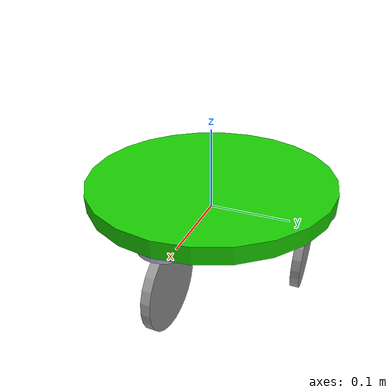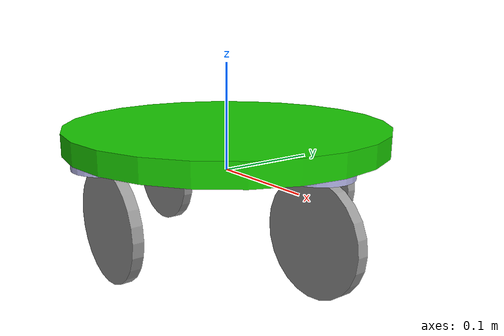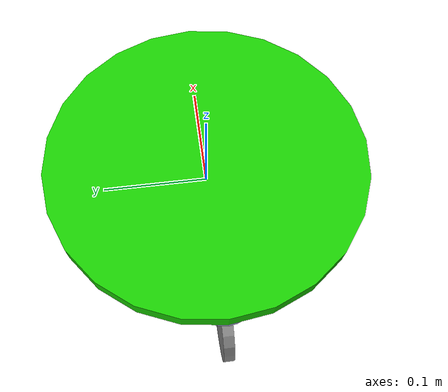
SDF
<?xml version='1.0'?>
<sdf version='1.6'>
  <model name='my_model'>
    <link name='link_0'>
      <pose frame=''>0 0 0.034444 0 -0 0</pose>
      <inertial>
        <mass>1</mass>
        <inertia>
          <ixx>0.145833</ixx>
          <ixy>0</ixy>
          <ixz>0</ixz>
          <iyy>0.145833</iyy>
          <iyz>0</iyz>
          <izz>0.125</izz>
        </inertia>
        <pose frame=''>0 0 0 0 -0 0</pose>
      </inertial>
      <self_collide>0</self_collide>
      <kinematic>0</kinematic>
      <gravity>1</gravity>
      <visual name='visual'>
        <pose frame=''>0 0 0 0 -0 0</pose>
        <geometry>
          <cylinder>
            <radius>0.15</radius>
            <length>0.02</length>
          </cylinder>
        </geometry>
        <material>
          <lighting>1</lighting>
          <script>
            <uri>file://media/materials/scripts/gazebo.material</uri>
            <name>Gazebo/Grey</name>
          </script>
          <shader type='pixel'>
            <normal_map>__default__</normal_map>
          </shader>
          <ambient>0.01 0.5 0.01 1</ambient>
          <diffuse>0.1 0.8 0.01 1</diffuse>
          <specular>0.01 0.01 0.01 1</specular>
          <emissive>0 0 0 1</emissive>
        </material>
        <transparency>0</transparency>
        <cast_shadows>1</cast_shadows>
      </visual>
      <collision name='collision'>
        <laser_retro>0</laser_retro>
        <max_contacts>10</max_contacts>
        <pose frame=''>0 0 0 0 -0 0</pose>
        <geometry>
          <cylinder>
            <radius>0.15</radius>
            <length>0.02</length>
          </cylinder>
        </geometry>
        <surface>
          <friction>
            <ode>
              <mu>1</mu>
              <mu2>1</mu2>
              <fdir1>0 0 0</fdir1>
              <slip1>0</slip1>
              <slip2>0</slip2>
            </ode>
            <torsional>
              <coefficient>1</coefficient>
              <patch_radius>0</patch_radius>
              <surface_radius>0</surface_radius>
              <use_patch_radius>1</use_patch_radius>
              <ode>
                <slip>0</slip>
              </ode>
            </torsional>
          </friction>
          <bounce>
            <restitution_coefficient>0</restitution_coefficient>
            <threshold>1e+06</threshold>
          </bounce>
          <contact>
            <collide_without_contact>0</collide_without_contact>
            <collide_without_contact_bitmask>1</collide_without_contact_bitmask>
            <collide_bitmask>1</collide_bitmask>
            <ode>
              <soft_cfm>0</soft_cfm>
              <soft_erp>0.2</soft_erp>
              <kp>1e+13</kp>
              <kd>1</kd>
              <max_vel>0.01</max_vel>
              <min_depth>0</min_depth>
            </ode>
            <bullet>
              <split_impulse>1</split_impulse>
              <split_impulse_penetration_threshold>-0.01</split_impulse_penetration_threshold>
              <soft_cfm>0</soft_cfm>
              <soft_erp>0.2</soft_erp>
              <kp>1e+13</kp>
              <kd>1</kd>
            </bullet>
          </contact>
        </surface>
      </collision>
    </link>
    <link name='link_1'>
      <pose frame=''>0.12 0 -0.030556 1.5708 -0 0</pose>
      <inertial>
        <mass>1</mass>
        <inertia>
          <ixx>0.145833</ixx>
          <ixy>0</ixy>
          <ixz>0</ixz>
          <iyy>0.145833</iyy>
          <iyz>0</iyz>
          <izz>0.125</izz>
        </inertia>
        <pose frame=''>0 0 0 0 -0 0</pose>
      </inertial>
      <self_collide>0</self_collide>
      <kinematic>0</kinematic>
      <gravity>1</gravity>
      <visual name='visual'>
        <pose frame=''>0 0 0 0 -0 0</pose>
        <geometry>
          <cylinder>
            <radius>0.05</radius>
            <length>0.01</length>
          </cylinder>
        </geometry>
        <material>
          <lighting>1</lighting>
          <script>
            <uri>file://media/materials/scripts/gazebo.material</uri>
            <name>Gazebo/Grey</name>
          </script>
          <shader type='pixel'>
            <normal_map>__default__</normal_map>
          </shader>
          <ambient>0.4 0.4 0.4 1</ambient>
          <diffuse>0.4 0.4 0.4 1</diffuse>
          <specular>0.01 0.01 0.01 1</specular>
          <emissive>0 0 0 1</emissive>
        </material>
        <transparency>0</transparency>
        <cast_shadows>1</cast_shadows>
      </visual>
      <collision name='collision'>
        <laser_retro>0</laser_retro>
        <max_contacts>10</max_contacts>
        <pose frame=''>0 0 0 0 -0 0</pose>
        <geometry>
          <cylinder>
            <radius>0.05</radius>
            <length>0.01</length>
          </cylinder>
        </geometry>
        <surface>
          <friction>
            <ode>
              <mu>1</mu>
              <mu2>1</mu2>
              <fdir1>0 0 0</fdir1>
              <slip1>0</slip1>
              <slip2>0</slip2>
            </ode>
            <torsional>
              <coefficient>1</coefficient>
              <patch_radius>0</patch_radius>
              <surface_radius>0</surface_radius>
              <use_patch_radius>1</use_patch_radius>
              <ode>
                <slip>0</slip>
              </ode>
            </torsional>
          </friction>
          <bounce>
            <restitution_coefficient>0</restitution_coefficient>
            <threshold>1e+06</threshold>
          </bounce>
          <contact>
            <collide_without_contact>0</collide_without_contact>
            <collide_without_contact_bitmask>1</collide_without_contact_bitmask>
            <collide_bitmask>1</collide_bitmask>
            <ode>
              <soft_cfm>0</soft_cfm>
              <soft_erp>0.2</soft_erp>
              <kp>1e+13</kp>
              <kd>1</kd>
              <max_vel>0.01</max_vel>
              <min_depth>0</min_depth>
            </ode>
            <bullet>
              <split_impulse>1</split_impulse>
              <split_impulse_penetration_threshold>-0.01</split_impulse_penetration_threshold>
              <soft_cfm>0</soft_cfm>
              <soft_erp>0.2</soft_erp>
              <kp>1e+13</kp>
              <kd>1</kd>
            </bullet>
          </contact>
        </surface>
      </collision>
    </link>
    <link name='link_1_clone'>
      <pose frame=''>0 0.12 -0.030556 1.5708 -0 0</pose>
      <inertial>
        <mass>1</mass>
        <inertia>
          <ixx>0.145833</ixx>
          <ixy>0</ixy>
          <ixz>0</ixz>
          <iyy>0.145833</iyy>
          <iyz>0</iyz>
          <izz>0.125</izz>
        </inertia>
        <pose frame=''>0 0 0 0 -0 0</pose>
      </inertial>
      <self_collide>0</self_collide>
      <kinematic>0</kinematic>
      <gravity>1</gravity>
      <visual name='visual'>
        <pose frame=''>0 0 0 0 -0 0</pose>
        <geometry>
          <cylinder>
            <radius>0.05</radius>
            <length>0.01</length>
          </cylinder>
        </geometry>
        <material>
          <lighting>1</lighting>
          <script>
            <uri>file://media/materials/scripts/gazebo.material</uri>
            <name>Gazebo/Grey</name>
          </script>
          <shader type='pixel'>
            <normal_map>__default__</normal_map>
          </shader>
          <ambient>0.4 0.4 0.4 1</ambient>
          <diffuse>0.4 0.4 0.4 1</diffuse>
          <specular>0.01 0.01 0.01 1</specular>
          <emissive>0 0 0 1</emissive>
        </material>
        <transparency>0</transparency>
        <cast_shadows>1</cast_shadows>
      </visual>
      <collision name='collision'>
        <laser_retro>0</laser_retro>
        <max_contacts>10</max_contacts>
        <pose frame=''>0 0 0 0 -0 0</pose>
        <geometry>
          <cylinder>
            <radius>0.05</radius>
            <length>0.01</length>
          </cylinder>
        </geometry>
        <surface>
          <friction>
            <ode>
              <mu>1</mu>
              <mu2>1</mu2>
              <fdir1>0 0 0</fdir1>
              <slip1>0</slip1>
              <slip2>0</slip2>
            </ode>
            <torsional>
              <coefficient>1</coefficient>
              <patch_radius>0</patch_radius>
              <surface_radius>0</surface_radius>
              <use_patch_radius>1</use_patch_radius>
              <ode>
                <slip>0</slip>
              </ode>
            </torsional>
          </friction>
          <bounce>
            <restitution_coefficient>0</restitution_coefficient>
            <threshold>1e+06</threshold>
          </bounce>
          <contact>
            <collide_without_contact>0</collide_without_contact>
            <collide_without_contact_bitmask>1</collide_without_contact_bitmask>
            <collide_bitmask>1</collide_bitmask>
            <ode>
              <soft_cfm>0</soft_cfm>
              <soft_erp>0.2</soft_erp>
              <kp>1e+13</kp>
              <kd>1</kd>
              <max_vel>0.01</max_vel>
              <min_depth>0</min_depth>
            </ode>
            <bullet>
              <split_impulse>1</split_impulse>
              <split_impulse_penetration_threshold>-0.01</split_impulse_penetration_threshold>
              <soft_cfm>0</soft_cfm>
              <soft_erp>0.2</soft_erp>
              <kp>1e+13</kp>
              <kd>1</kd>
            </bullet>
          </contact>
        </surface>
      </collision>
    </link>
    <link name='link_1_clone_0'>
      <pose frame=''>0 -0.12 -0.030556 1.5708 -0 0</pose>
      <inertial>
        <mass>1</mass>
        <inertia>
          <ixx>0.145833</ixx>
          <ixy>0</ixy>
          <ixz>0</ixz>
          <iyy>0.145833</iyy>
          <iyz>0</iyz>
          <izz>0.125</izz>
        </inertia>
        <pose frame=''>0 0 0 0 -0 0</pose>
      </inertial>
      <self_collide>0</self_collide>
      <kinematic>0</kinematic>
      <gravity>1</gravity>
      <visual name='visual'>
        <pose frame=''>0 0 0 0 -0 0</pose>
        <geometry>
          <cylinder>
            <radius>0.05</radius>
            <length>0.01</length>
          </cylinder>
        </geometry>
        <material>
          <lighting>1</lighting>
          <script>
            <uri>file://media/materials/scripts/gazebo.material</uri>
            <name>Gazebo/Grey</name>
          </script>
          <shader type='pixel'>
            <normal_map>__default__</normal_map>
          </shader>
          <ambient>0.4 0.4 0.4 1</ambient>
          <diffuse>0.4 0.4 0.4 1</diffuse>
          <specular>0.01 0.01 0.01 1</specular>
          <emissive>0 0 0 1</emissive>
        </material>
        <transparency>0</transparency>
        <cast_shadows>1</cast_shadows>
      </visual>
      <collision name='collision'>
        <laser_retro>0</laser_retro>
        <max_contacts>10</max_contacts>
        <pose frame=''>0 0 0 0 -0 0</pose>
        <geometry>
          <cylinder>
            <radius>0.05</radius>
            <length>0.01</length>
          </cylinder>
        </geometry>
        <surface>
          <friction>
            <ode>
              <mu>1</mu>
              <mu2>1</mu2>
              <fdir1>0 0 0</fdir1>
              <slip1>0</slip1>
              <slip2>0</slip2>
            </ode>
            <torsional>
              <coefficient>1</coefficient>
              <patch_radius>0</patch_radius>
              <surface_radius>0</surface_radius>
              <use_patch_radius>1</use_patch_radius>
              <ode>
                <slip>0</slip>
              </ode>
            </torsional>
          </friction>
          <bounce>
            <restitution_coefficient>0</restitution_coefficient>
            <threshold>1e+06</threshold>
          </bounce>
          <contact>
            <collide_without_contact>0</collide_without_contact>
            <collide_without_contact_bitmask>1</collide_without_contact_bitmask>
            <collide_bitmask>1</collide_bitmask>
            <ode>
              <soft_cfm>0</soft_cfm>
              <soft_erp>0.2</soft_erp>
              <kp>1e+13</kp>
              <kd>1</kd>
              <max_vel>0.01</max_vel>
              <min_depth>0</min_depth>
            </ode>
            <bullet>
              <split_impulse>1</split_impulse>
              <split_impulse_penetration_threshold>-0.01</split_impulse_penetration_threshold>
              <soft_cfm>0</soft_cfm>
              <soft_erp>0.2</soft_erp>
              <kp>1e+13</kp>
              <kd>1</kd>
            </bullet>
          </contact>
        </surface>
      </collision>
    </link>
    <link name='link_1_clone_1'>
      <pose frame=''>-0.12 0 -0.030556 1.5708 -0 0</pose>
      <inertial>
        <mass>1</mass>
        <inertia>
          <ixx>0.145833</ixx>
          <ixy>0</ixy>
          <ixz>0</ixz>
          <iyy>0.145833</iyy>
          <iyz>0</iyz>
          <izz>0.125</izz>
        </inertia>
        <pose frame=''>0 0 0 0 -0 0</pose>
      </inertial>
      <self_collide>0</self_collide>
      <kinematic>0</kinematic>
      <gravity>1</gravity>
      <visual name='visual'>
        <pose frame=''>0 0 0 0 -0 0</pose>
        <geometry>
          <cylinder>
            <radius>0.05</radius>
            <length>0.01</length>
          </cylinder>
        </geometry>
        <material>
          <lighting>1</lighting>
          <script>
            <uri>file://media/materials/scripts/gazebo.material</uri>
            <name>Gazebo/Grey</name>
          </script>
          <shader type='pixel'>
            <normal_map>__default__</normal_map>
          </shader>
          <ambient>0.4 0.4 0.4 1</ambient>
          <diffuse>0.4 0.4 0.4 1</diffuse>
          <specular>0.01 0.01 0.01 1</specular>
          <emissive>0 0 0 1</emissive>
        </material>
        <transparency>0</transparency>
        <cast_shadows>1</cast_shadows>
      </visual>
      <collision name='collision'>
        <laser_retro>0</laser_retro>
        <max_contacts>10</max_contacts>
        <pose frame=''>0 0 0 0 -0 0</pose>
        <geometry>
          <cylinder>
            <radius>0.05</radius>
            <length>0.01</length>
          </cylinder>
        </geometry>
        <surface>
          <friction>
            <ode>
              <mu>1</mu>
              <mu2>1</mu2>
              <fdir1>0 0 0</fdir1>
              <slip1>0</slip1>
              <slip2>0</slip2>
            </ode>
            <torsional>
              <coefficient>1</coefficient>
              <patch_radius>0</patch_radius>
              <surface_radius>0</surface_radius>
              <use_patch_radius>1</use_patch_radius>
              <ode>
                <slip>0</slip>
              </ode>
            </torsional>
          </friction>
          <bounce>
            <restitution_coefficient>0</restitution_coefficient>
            <threshold>1e+06</threshold>
          </bounce>
          <contact>
            <collide_without_contact>0</collide_without_contact>
            <collide_without_contact_bitmask>1</collide_without_contact_bitmask>
            <collide_bitmask>1</collide_bitmask>
            <ode>
              <soft_cfm>0</soft_cfm>
              <soft_erp>0.2</soft_erp>
              <kp>1e+13</kp>
              <kd>1</kd>
              <max_vel>0.01</max_vel>
              <min_depth>0</min_depth>
            </ode>
            <bullet>
              <split_impulse>1</split_impulse>
              <split_impulse_penetration_threshold>-0.01</split_impulse_penetration_threshold>
              <soft_cfm>0</soft_cfm>
              <soft_erp>0.2</soft_erp>
              <kp>1e+13</kp>
              <kd>1</kd>
            </bullet>
          </contact>
        </surface>
      </collision>
    </link>
    <link name='link_3'>
      <pose frame=''>-0.12 0 0.021944 0 -0 0</pose>
      <inertial>
        <mass>1</mass>
        <inertia>
          <ixx>0.145833</ixx>
          <ixy>0</ixy>
          <ixz>0</ixz>
          <iyy>0.145833</iyy>
          <iyz>0</iyz>
          <izz>0.125</izz>
        </inertia>
        <pose frame=''>0 0 0 0 -0 0</pose>
      </inertial>
      <self_collide>0</self_collide>
      <kinematic>0</kinematic>
      <gravity>1</gravity>
      <visual name='visual'>
        <pose frame=''>0 0 0 0 -0 0</pose>
        <geometry>
          <cylinder>
            <radius>0.03</radius>
            <length>0.005</length>
          </cylinder>
        </geometry>
        <material>
          <lighting>1</lighting>
          <script>
            <uri>file://media/materials/scripts/gazebo.material</uri>
            <name>Gazebo/Grey</name>
          </script>
          <shader type='pixel'>
            <normal_map>__default__</normal_map>
          </shader>
          <ambient>0.3 0.3 0.7 1</ambient>
          <diffuse>0.7 0.7 0.9 1</diffuse>
          <specular>0.01 0.01 0.01 1</specular>
          <emissive>0 0 0 1</emissive>
        </material>
        <transparency>0</transparency>
        <cast_shadows>1</cast_shadows>
      </visual>
      <collision name='collision'>
        <laser_retro>0</laser_retro>
        <max_contacts>10</max_contacts>
        <pose frame=''>0 0 0 0 -0 0</pose>
        <geometry>
          <cylinder>
            <radius>0.03</radius>
            <length>0.005</length>
          </cylinder>
        </geometry>
        <surface>
          <friction>
            <ode>
              <mu>1</mu>
              <mu2>1</mu2>
              <fdir1>0 0 0</fdir1>
              <slip1>0</slip1>
              <slip2>0</slip2>
            </ode>
            <torsional>
              <coefficient>1</coefficient>
              <patch_radius>0</patch_radius>
              <surface_radius>0</surface_radius>
              <use_patch_radius>1</use_patch_radius>
              <ode>
                <slip>0</slip>
              </ode>
            </torsional>
          </friction>
          <bounce>
            <restitution_coefficient>0</restitution_coefficient>
            <threshold>1e+06</threshold>
          </bounce>
          <contact>
            <collide_without_contact>0</collide_without_contact>
            <collide_without_contact_bitmask>1</collide_without_contact_bitmask>
            <collide_bitmask>1</collide_bitmask>
            <ode>
              <soft_cfm>0</soft_cfm>
              <soft_erp>0.2</soft_erp>
              <kp>1e+13</kp>
              <kd>1</kd>
              <max_vel>0.01</max_vel>
              <min_depth>0</min_depth>
            </ode>
            <bullet>
              <split_impulse>1</split_impulse>
              <split_impulse_penetration_threshold>-0.01</split_impulse_penetration_threshold>
              <soft_cfm>0</soft_cfm>
              <soft_erp>0.2</soft_erp>
              <kp>1e+13</kp>
              <kd>1</kd>
            </bullet>
          </contact>
        </surface>
      </collision>
    </link>
    <link name='link_3_clone'>
      <pose frame=''>0.12 0 0.021944 0 -0 0</pose>
      <inertial>
        <mass>1</mass>
        <inertia>
          <ixx>0.145833</ixx>
          <ixy>0</ixy>
          <ixz>0</ixz>
          <iyy>0.145833</iyy>
          <iyz>0</iyz>
          <izz>0.125</izz>
        </inertia>
        <pose frame=''>0 0 0 0 -0 0</pose>
      </inertial>
      <self_collide>0</self_collide>
      <kinematic>0</kinematic>
      <gravity>1</gravity>
      <visual name='visual'>
        <pose frame=''>0 0 0 0 -0 0</pose>
        <geometry>
          <cylinder>
            <radius>0.03</radius>
            <length>0.005</length>
          </cylinder>
        </geometry>
        <material>
          <lighting>1</lighting>
          <script>
            <uri>file://media/materials/scripts/gazebo.material</uri>
            <name>Gazebo/Grey</name>
          </script>
          <shader type='pixel'>
            <normal_map>__default__</normal_map>
          </shader>
          <ambient>0.3 0.3 0.7 1</ambient>
          <diffuse>0.7 0.7 0.9 1</diffuse>
          <specular>0.01 0.01 0.01 1</specular>
          <emissive>0 0 0 1</emissive>
        </material>
        <transparency>0</transparency>
        <cast_shadows>1</cast_shadows>
      </visual>
      <collision name='collision'>
        <laser_retro>0</laser_retro>
        <max_contacts>10</max_contacts>
        <pose frame=''>0 0 0 0 -0 0</pose>
        <geometry>
          <cylinder>
            <radius>0.03</radius>
            <length>0.005</length>
          </cylinder>
        </geometry>
        <surface>
          <friction>
            <ode>
              <mu>1</mu>
              <mu2>1</mu2>
              <fdir1>0 0 0</fdir1>
              <slip1>0</slip1>
              <slip2>0</slip2>
            </ode>
            <torsional>
              <coefficient>1</coefficient>
              <patch_radius>0</patch_radius>
              <surface_radius>0</surface_radius>
              <use_patch_radius>1</use_patch_radius>
              <ode>
                <slip>0</slip>
              </ode>
            </torsional>
          </friction>
          <bounce>
            <restitution_coefficient>0</restitution_coefficient>
            <threshold>1e+06</threshold>
          </bounce>
          <contact>
            <collide_without_contact>0</collide_without_contact>
            <collide_without_contact_bitmask>1</collide_without_contact_bitmask>
            <collide_bitmask>1</collide_bitmask>
            <ode>
              <soft_cfm>0</soft_cfm>
              <soft_erp>0.2</soft_erp>
              <kp>1e+13</kp>
              <kd>1</kd>
              <max_vel>0.01</max_vel>
              <min_depth>0</min_depth>
            </ode>
            <bullet>
              <split_impulse>1</split_impulse>
              <split_impulse_penetration_threshold>-0.01</split_impulse_penetration_threshold>
              <soft_cfm>0</soft_cfm>
              <soft_erp>0.2</soft_erp>
              <kp>1e+13</kp>
              <kd>1</kd>
            </bullet>
          </contact>
        </surface>
      </collision>
    </link>
    <link name='link_3_clone_0'>
      <pose frame=''>0 0.12 0.021944 0 -0 0</pose>
      <inertial>
        <mass>1</mass>
        <inertia>
          <ixx>0.145833</ixx>
          <ixy>0</ixy>
          <ixz>0</ixz>
          <iyy>0.145833</iyy>
          <iyz>0</iyz>
          <izz>0.125</izz>
        </inertia>
        <pose frame=''>0 0 0 0 -0 0</pose>
      </inertial>
      <self_collide>0</self_collide>
      <kinematic>0</kinematic>
      <gravity>1</gravity>
      <visual name='visual'>
        <pose frame=''>0 0 0 0 -0 0</pose>
        <geometry>
          <cylinder>
            <radius>0.03</radius>
            <length>0.005</length>
          </cylinder>
        </geometry>
        <material>
          <lighting>1</lighting>
          <script>
            <uri>file://media/materials/scripts/gazebo.material</uri>
            <name>Gazebo/Grey</name>
          </script>
          <shader type='pixel'>
            <normal_map>__default__</normal_map>
          </shader>
          <ambient>0.3 0.3 0.7 1</ambient>
          <diffuse>0.7 0.7 0.9 1</diffuse>
          <specular>0.01 0.01 0.01 1</specular>
          <emissive>0 0 0 1</emissive>
        </material>
        <transparency>0</transparency>
        <cast_shadows>1</cast_shadows>
      </visual>
      <collision name='collision'>
        <laser_retro>0</laser_retro>
        <max_contacts>10</max_contacts>
        <pose frame=''>0 0 0 0 -0 0</pose>
        <geometry>
          <cylinder>
            <radius>0.03</radius>
            <length>0.005</length>
          </cylinder>
        </geometry>
        <surface>
          <friction>
            <ode>
              <mu>1</mu>
              <mu2>1</mu2>
              <fdir1>0 0 0</fdir1>
              <slip1>0</slip1>
              <slip2>0</slip2>
            </ode>
            <torsional>
              <coefficient>1</coefficient>
              <patch_radius>0</patch_radius>
              <surface_radius>0</surface_radius>
              <use_patch_radius>1</use_patch_radius>
              <ode>
                <slip>0</slip>
              </ode>
            </torsional>
          </friction>
          <bounce>
            <restitution_coefficient>0</restitution_coefficient>
            <threshold>1e+06</threshold>
          </bounce>
          <contact>
            <collide_without_contact>0</collide_without_contact>
            <collide_without_contact_bitmask>1</collide_without_contact_bitmask>
            <collide_bitmask>1</collide_bitmask>
            <ode>
              <soft_cfm>0</soft_cfm>
              <soft_erp>0.2</soft_erp>
              <kp>1e+13</kp>
              <kd>1</kd>
              <max_vel>0.01</max_vel>
              <min_depth>0</min_depth>
            </ode>
            <bullet>
              <split_impulse>1</split_impulse>
              <split_impulse_penetration_threshold>-0.01</split_impulse_penetration_threshold>
              <soft_cfm>0</soft_cfm>
              <soft_erp>0.2</soft_erp>
              <kp>1e+13</kp>
              <kd>1</kd>
            </bullet>
          </contact>
        </surface>
      </collision>
    </link>
    <link name='link_3_clone_1'>
      <pose frame=''>0 -0.12 0.021944 0 -0 0</pose>
      <inertial>
        <mass>1</mass>
        <inertia>
          <ixx>0.145833</ixx>
          <ixy>0</ixy>
          <ixz>0</ixz>
          <iyy>0.145833</iyy>
          <iyz>0</iyz>
          <izz>0.125</izz>
        </inertia>
        <pose frame=''>0 0 0 0 -0 0</pose>
      </inertial>
      <self_collide>0</self_collide>
      <kinematic>0</kinematic>
      <gravity>1</gravity>
      <visual name='visual'>
        <pose frame=''>0 0 0 0 -0 0</pose>
        <geometry>
          <cylinder>
            <radius>0.03</radius>
            <length>0.005</length>
          </cylinder>
        </geometry>
        <material>
          <lighting>1</lighting>
          <script>
            <uri>file://media/materials/scripts/gazebo.material</uri>
            <name>Gazebo/Grey</name>
          </script>
          <shader type='pixel'>
            <normal_map>__default__</normal_map>
          </shader>
          <ambient>0.3 0.3 0.7 1</ambient>
          <diffuse>0.7 0.7 0.9 1</diffuse>
          <specular>0.01 0.01 0.01 1</specular>
          <emissive>0 0 0 1</emissive>
        </material>
        <transparency>0</transparency>
        <cast_shadows>1</cast_shadows>
      </visual>
      <collision name='collision'>
        <laser_retro>0</laser_retro>
        <max_contacts>10</max_contacts>
        <pose frame=''>0 0 0 0 -0 0</pose>
        <geometry>
          <cylinder>
            <radius>0.03</radius>
            <length>0.005</length>
          </cylinder>
        </geometry>
        <surface>
          <friction>
            <ode>
              <mu>1</mu>
              <mu2>1</mu2>
              <fdir1>0 0 0</fdir1>
              <slip1>0</slip1>
              <slip2>0</slip2>
            </ode>
            <torsional>
              <coefficient>1</coefficient>
              <patch_radius>0</patch_radius>
              <surface_radius>0</surface_radius>
              <use_patch_radius>1</use_patch_radius>
              <ode>
                <slip>0</slip>
              </ode>
            </torsional>
          </friction>
          <bounce>
            <restitution_coefficient>0</restitution_coefficient>
            <threshold>1e+06</threshold>
          </bounce>
          <contact>
            <collide_without_contact>0</collide_without_contact>
            <collide_without_contact_bitmask>1</collide_without_contact_bitmask>
            <collide_bitmask>1</collide_bitmask>
            <ode>
              <soft_cfm>0</soft_cfm>
              <soft_erp>0.2</soft_erp>
              <kp>1e+13</kp>
              <kd>1</kd>
              <max_vel>0.01</max_vel>
              <min_depth>0</min_depth>
            </ode>
            <bullet>
              <split_impulse>1</split_impulse>
              <split_impulse_penetration_threshold>-0.01</split_impulse_penetration_threshold>
              <soft_cfm>0</soft_cfm>
              <soft_erp>0.2</soft_erp>
              <kp>1e+13</kp>
              <kd>1</kd>
            </bullet>
          </contact>
        </surface>
      </collision>
    </link>
    <joint name='link_0_JOINT_0' type='revolute'>
      <parent>link_0</parent>
      <child>link_3_clone</child>
      <pose frame=''>0 0 0 0 -0 0</pose>
      <axis>
        <xyz>0 0 1</xyz>
        <use_parent_model_frame>0</use_parent_model_frame>
        <limit>
          <lower>-1.79769e+308</lower>
          <upper>1.79769e+308</upper>
          <effort>-1</effort>
          <velocity>-1</velocity>
        </limit>
        <dynamics>
          <spring_reference>0</spring_reference>
          <spring_stiffness>0</spring_stiffness>
          <damping>0</damping>
          <friction>0</friction>
        </dynamics>
      </axis>
      <physics>
        <ode>
          <limit>
            <cfm>0</cfm>
            <erp>0.2</erp>
          </limit>
          <suspension>
            <cfm>0</cfm>
            <erp>0.2</erp>
          </suspension>
        </ode>
      </physics>
    </joint>
    <joint name='link_0_JOINT_1' type='revolute'>
      <parent>link_0</parent>
      <child>link_3_clone_0</child>
      <pose frame=''>0 0 0 0 -0 0</pose>
      <axis>
        <xyz>0 0 1</xyz>
        <use_parent_model_frame>0</use_parent_model_frame>
        <limit>
          <lower>-1.79769e+308</lower>
          <upper>1.79769e+308</upper>
          <effort>-1</effort>
          <velocity>-1</velocity>
        </limit>
        <dynamics>
          <spring_reference>0</spring_reference>
          <spring_stiffness>0</spring_stiffness>
          <damping>0</damping>
          <friction>0</friction>
        </dynamics>
      </axis>
      <physics>
        <ode>
          <limit>
            <cfm>0</cfm>
            <erp>0.2</erp>
          </limit>
          <suspension>
            <cfm>0</cfm>
            <erp>0.2</erp>
          </suspension>
        </ode>
      </physics>
    </joint>
    <joint name='link_0_JOINT_2' type='revolute'>
      <parent>link_0</parent>
      <child>link_3_clone_1</child>
      <pose frame=''>0 0 0 0 -0 0</pose>
      <axis>
        <xyz>0 0 1</xyz>
        <use_parent_model_frame>0</use_parent_model_frame>
        <limit>
          <lower>-1.79769e+308</lower>
          <upper>1.79769e+308</upper>
          <effort>-1</effort>
          <velocity>-1</velocity>
        </limit>
        <dynamics>
          <spring_reference>0</spring_reference>
          <spring_stiffness>0</spring_stiffness>
          <damping>0</damping>
          <friction>0</friction>
        </dynamics>
      </axis>
      <physics>
        <ode>
          <limit>
            <cfm>0</cfm>
            <erp>0.2</erp>
          </limit>
          <suspension>
            <cfm>0</cfm>
            <erp>0.2</erp>
          </suspension>
        </ode>
      </physics>
    </joint>
    <joint name='link_0_JOINT_3' type='revolute'>
      <parent>link_0</parent>
      <child>link_3</child>
      <pose frame=''>0 0 0 0 -0 0</pose>
      <axis>
        <xyz>0 0 1</xyz>
        <use_parent_model_frame>0</use_parent_model_frame>
        <limit>
          <lower>-1.79769e+308</lower>
          <upper>1.79769e+308</upper>
          <effort>-1</effort>
          <velocity>-1</velocity>
        </limit>
        <dynamics>
          <spring_reference>0</spring_reference>
          <spring_stiffness>0</spring_stiffness>
          <damping>0</damping>
          <friction>0</friction>
        </dynamics>
      </axis>
      <physics>
        <ode>
          <limit>
            <cfm>0</cfm>
            <erp>0.2</erp>
          </limit>
          <suspension>
            <cfm>0</cfm>
            <erp>0.2</erp>
          </suspension>
        </ode>
      </physics>
    </joint>
    <joint name='link_3_JOINT_4' type='revolute'>
      <parent>link_3</parent>
      <child>link_1_clone_1</child>
      <pose frame=''>0 0 0 0 -0 0</pose>
      <axis>
        <xyz>1 0 0</xyz>
        <use_parent_model_frame>0</use_parent_model_frame>
        <limit>
          <lower>-1.79769e+308</lower>
          <upper>1.79769e+308</upper>
          <effort>-1</effort>
          <velocity>-1</velocity>
        </limit>
        <dynamics>
          <spring_reference>0</spring_reference>
          <spring_stiffness>0</spring_stiffness>
          <damping>0</damping>
          <friction>0</friction>
        </dynamics>
      </axis>
      <physics>
        <ode>
          <limit>
            <cfm>0</cfm>
            <erp>0.2</erp>
          </limit>
          <suspension>
            <cfm>0</cfm>
            <erp>0.2</erp>
          </suspension>
        </ode>
      </physics>
    </joint>
    <joint name='link_3_clone_0_JOINT_6' type='revolute'>
      <parent>link_3_clone_0</parent>
      <child>link_1_clone</child>
      <pose frame=''>0 0 0 0 -0 0</pose>
      <axis>
        <xyz>1 0 0</xyz>
        <use_parent_model_frame>0</use_parent_model_frame>
        <limit>
          <lower>-1.79769e+308</lower>
          <upper>1.79769e+308</upper>
          <effort>-1</effort>
          <velocity>-1</velocity>
        </limit>
        <dynamics>
          <spring_reference>0</spring_reference>
          <spring_stiffness>0</spring_stiffness>
          <damping>0</damping>
          <friction>0</friction>
        </dynamics>
      </axis>
      <physics>
        <ode>
          <limit>
            <cfm>0</cfm>
            <erp>0.2</erp>
          </limit>
          <suspension>
            <cfm>0</cfm>
            <erp>0.2</erp>
          </suspension>
        </ode>
      </physics>
    </joint>
    <joint name='link_3_clone_1_JOINT_7' type='revolute'>
      <parent>link_3_clone_1</parent>
      <child>link_1_clone_0</child>
      <pose frame=''>0 0 0 0 -0 0</pose>
      <axis>
        <xyz>1 0 0</xyz>
        <use_parent_model_frame>0</use_parent_model_frame>
        <limit>
          <lower>-1.79769e+308</lower>
          <upper>1.79769e+308</upper>
          <effort>-1</effort>
          <velocity>-1</velocity>
        </limit>
        <dynamics>
          <spring_reference>0</spring_reference>
          <spring_stiffness>0</spring_stiffness>
          <damping>0</damping>
          <friction>0</friction>
        </dynamics>
      </axis>
      <physics>
        <ode>
          <limit>
            <cfm>0</cfm>
            <erp>0.2</erp>
          </limit>
          <suspension>
            <cfm>0</cfm>
            <erp>0.2</erp>
          </suspension>
        </ode>
      </physics>
    </joint>
    <joint name='link_3_clone_JOINT_5' type='revolute'>
      <parent>link_3_clone</parent>
      <child>link_1</child>
      <pose frame=''>0 0 0 0 -0 0</pose>
      <axis>
        <xyz>1 0 0</xyz>
        <use_parent_model_frame>0</use_parent_model_frame>
        <limit>
          <lower>-1.79769e+308</lower>
          <upper>1.79769e+308</upper>
          <effort>-1</effort>
          <velocity>-1</velocity>
        </limit>
        <dynamics>
          <spring_reference>0</spring_reference>
          <spring_stiffness>0</spring_stiffness>
          <damping>0</damping>
          <friction>0</friction>
        </dynamics>
      </axis>
      <physics>
        <ode>
          <limit>
            <cfm>0</cfm>
            <erp>0.2</erp>
          </limit>
          <suspension>
            <cfm>0</cfm>
            <erp>0.2</erp>
          </suspension>
        </ode>
      </physics>
    </joint>
    <static>0</static>
    <allow_auto_disable>1</allow_auto_disable>
  </model>
</sdf>
